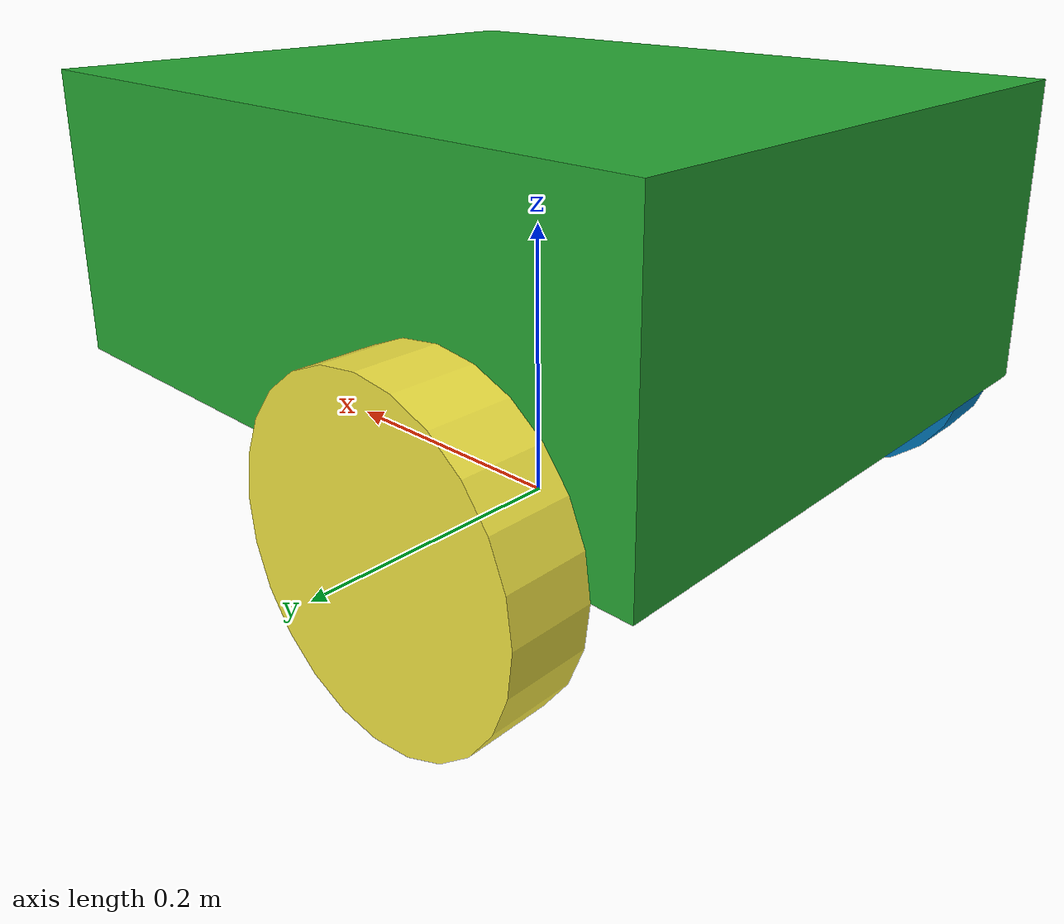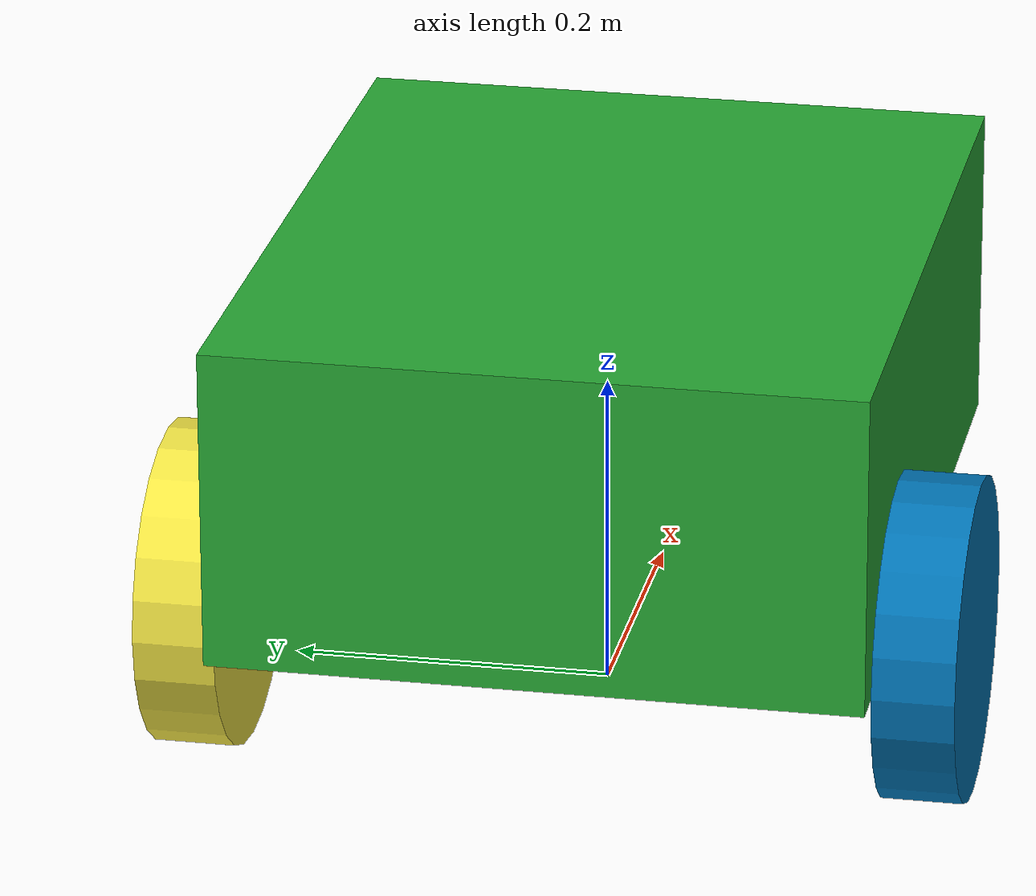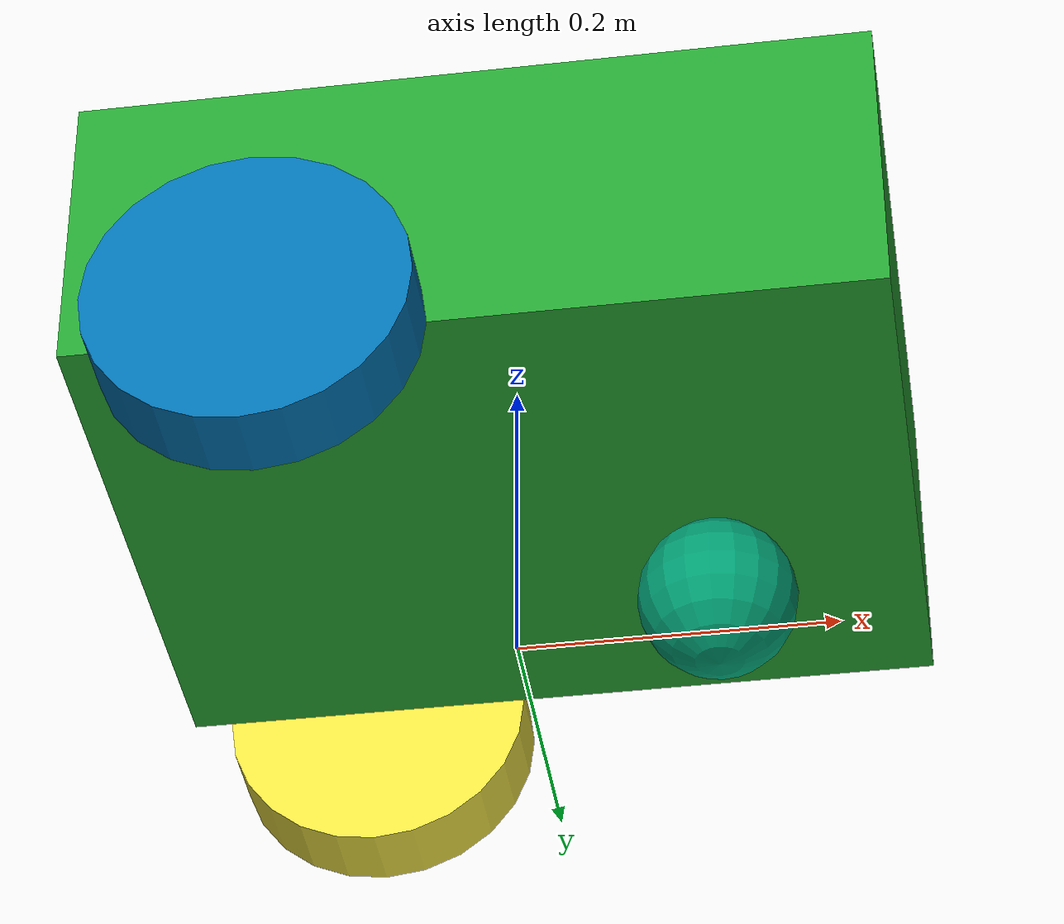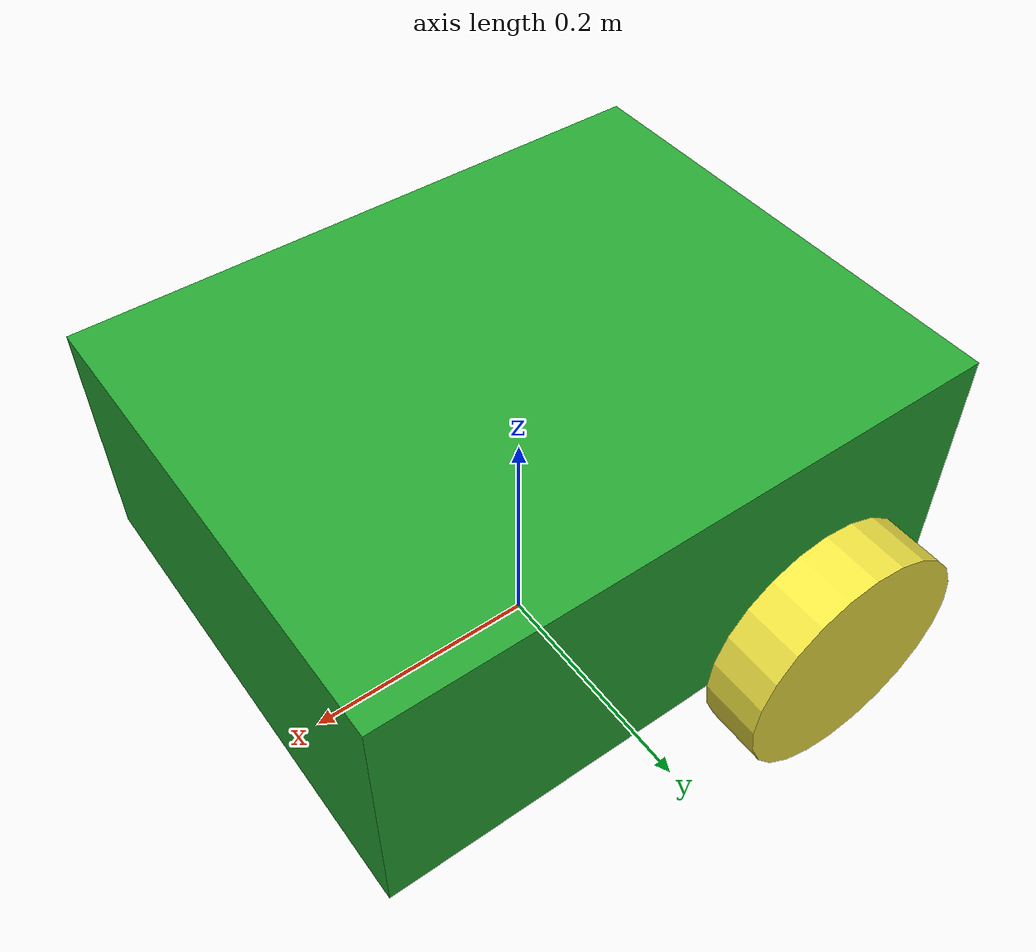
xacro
<?xml version="1.0"?>
<robot xmlns:xacro = "http://www.ros.rog/wiki/xacro">

        <xacro:property name = "base_length" value = "0.5"/>

        <xacro:macro name = "wheel_link" params = 'prefix'>
            <link name = "${prefix}_wheel_link">
                <visual>
                    <geometry>
                        <cylinder radius="0.1" length = "0.05"/>
                    </geometry>
                    <origin xyz="0 0 0" rpy="${pi / 2.0} 0 0"/>
                    <material name="somethingshit"></material>
                </visual>
                <collision>
                    <geometry>
                        <sphere radius = "0.1"></sphere>

                    </geometry>
                    <origin xyz="0 0 0" rpy="0 0 0"/>
                </collision>

                <xacro:wheel_inertia m = "0.2" r = "0.1" h = "0.05" o_xyz = "${-base_length / 4} 0.225 0" o_rpy = "${pi} 0 0"/>

            </link>

        </xacro:macro>

        <link name = "base_footprint"/>

        <link name="base_link">
                <visual>
                    <geometry>
                        <box size="${base_length} 0.4 0.2" />
                    </geometry>

                    <origin xyz="0 0 0.1" rpy="0 0 0" />
                    <material name="green"></material>
                </visual>
                <collision>
                    <geometry>
                        <box size="${base_length} 0.4 0.2" />
                    </geometry>

                    <origin xyz="0 0 0.1" rpy="0 0 0" />
                </collision>

                <xacro:box_inertia m = "5.0" x = "0.6" y = "0.4" z = "0.2"
                                    o_xyz = "0 0 0.1" o_rpy = "0 0 0"/>

            </link>

            <link name="caster_wheel">
                <visual>
                    <geometry>
                        <sphere radius = "0.05"/>
                        <material name="caster_wheel"/>
                    </geometry>
                </visual>
                <collision>
                    <geometry>
                        <sphere radius = "0.05"/>
                        <material name="caster_wheel"/>
                    </geometry>
                    <origin xyz="0 0 0" rpy="0 0 0" />

                </collision>
                <xacro:castor_wheel_inertia m = "1.5" r = "0.05"
                                    o_xyz = "0 0 -0.075" o_rpy = "0 0 0"/>

            </link>

            <xacro:wheel_link prefix = 'left'></xacro:wheel_link>
            <xacro:wheel_link prefix = 'right'></xacro:wheel_link>

            <joint name="base_right_wheel_joint" type="continuous">
                <origin xyz = "${-base_length / 4} -0.225 0" rpy = "${pi} 0 0"/>
                <parent link="base_link"/>
                <child link="right_wheel_link"/>
                <axis xyz="0 1 0"/>
            </joint>

            <joint name="base_left_wheel_joint" type="continuous">
                <origin xyz = "${-base_length / 4} 0.225 0" rpy = "${pi} 0 0"/>
                <parent link="base_link"/>
                <child link="left_wheel_link"/>
                <axis xyz="0 1 0"/>
            </joint>

            <joint name = "base_caster_joint" type = "fixed">
                <origin xyz = "${base_length / 4} 0 -0.075" rpy = "0 0 0"/>
                <parent link = "base_link"/>
                <child link = "caster_wheel"/>

            </joint>

            <joint name = "base_joint" type = "fixed">
                <parent link = "base_footprint"/>
                <child link = "base_link"/>
                <origin xyz = "0 0 0.1" rpy = "0 0 0"/>
            </joint>

</robot>
